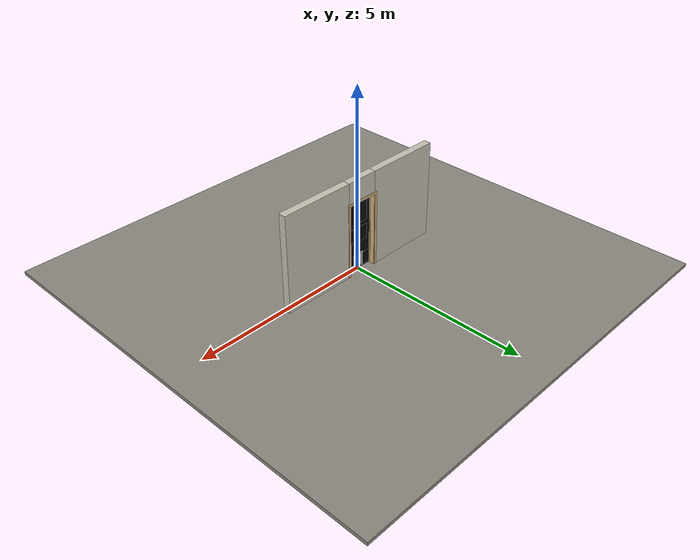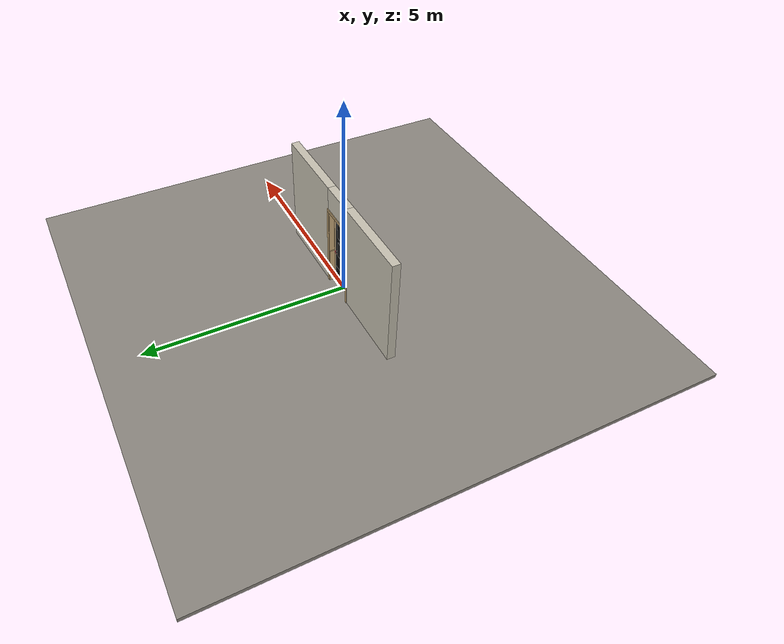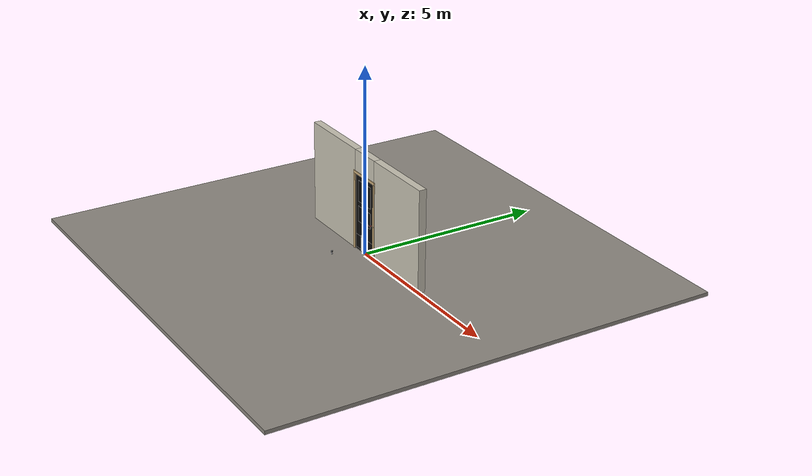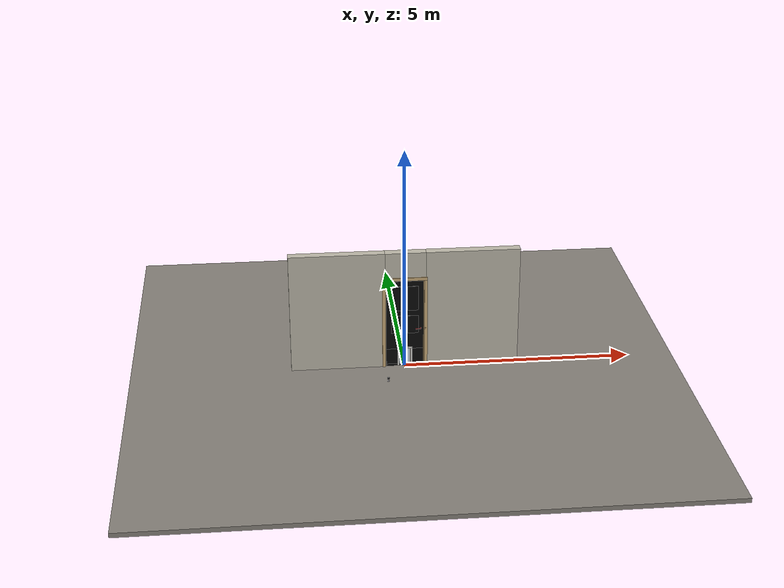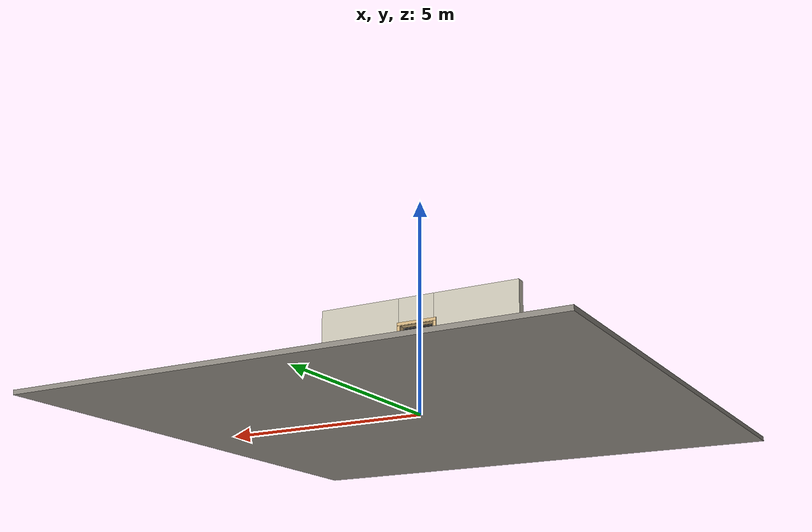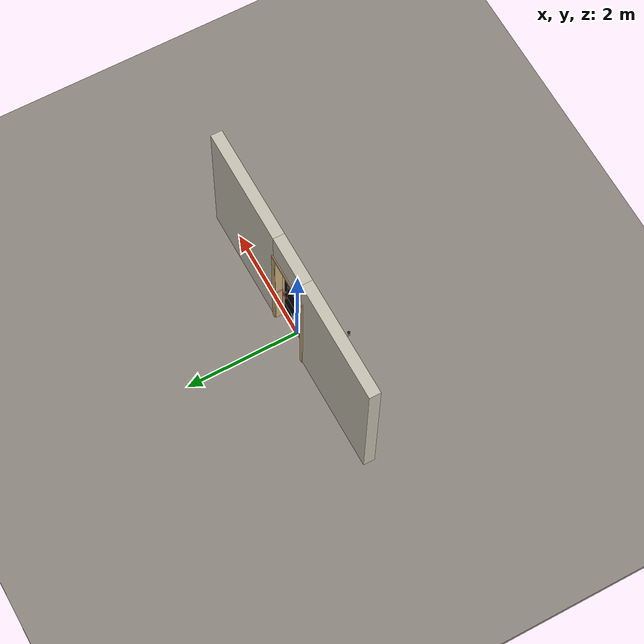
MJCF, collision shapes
<?xml version="1.0" ?>
<mujoco model="db0579_swing_single_full">
  <compiler angle="radian" meshdir="../../hardware" texturedir="../../textures" autolimits="true" inertiafromgeom="false"/>
  <option timestep="0.002" integrator="implicitfast" cone="elliptic" impratio="10" noslip_iterations="3">
    <flag multiccd="enable"/>
  </option>
  <size memory="16M"/>
  <default>
    <geom condim="4" solref="0.005 1" solimp="0.95 0.99 0.001"/>
    <joint solreflimit="0.005 1" solimplimit="0.95 0.99 0.001"/>
    <tendon solreflimit="0.005 1"/>
    <equality solref="0.002 1"/>
  </default>
  <visual>
    <headlight ambient="0.4 0.4 0.4" diffuse="0.7 0.7 0.7" specular="0.2 0.2 0.2"/>
    <quality shadowsize="4096"/>
    <map znear="0.01" zfar="60"/>
  </visual>
  <asset>
    <mesh name="hinge_96510cf394" file="hinge_96510cf394.obj"/>
    <mesh name="hinge_jamb_7fd4ca52b2" file="hinge_jamb_7fd4ca52b2.obj"/>
    <mesh name="lever_748f08efca" file="lever_748f08efca.obj"/>
    <material name="mat_floor" rgba="0.55 0.53 0.5 1" specular="0.2" shininess="0.15" reflectance="0"/>
    <material name="mat_wall" rgba="0.78 0.76 0.7 1" specular="0.2" shininess="0.1" reflectance="0"/>
    <material name="mat_leaf" rgba="0.04 0.04 0.04 1" specular="0.2" shininess="0.5" reflectance="0"/>
    <material name="mat_leaf_panel" rgba="0.037 0.037 0.037 1" specular="0.2" shininess="0.5" reflectance="0"/>
    <material name="mat_hinge" rgba="0.65 0.66 0.68 1" specular="0.74" shininess="0.5" reflectance="0.36"/>
    <material name="mat_op_chrome" rgba="0.9 0.9 0.92 1" specular="0.8" shininess="0.9" reflectance="0.4"/>
    <material name="mat_trim" rgba="0.85 0.66 0.3 1" specular="0.8" shininess="0.75" reflectance="0.4"/>
    <material name="mat_bolt" rgba="0.85 0.66 0.3 1" specular="0.8" shininess="0.75" reflectance="0.4"/>
    <material name="mat_frame" rgba="0.82 0.7 0.5 1" specular="0.2" shininess="0.45" reflectance="0"/>
    <material name="mat_seal" rgba="0.1 0.1 0.1 1" specular="0.2" shininess="0.1" reflectance="0"/>
    <material name="mat_petframe" rgba="0.92 0.92 0.9 1" specular="0.2" shininess="0.6" reflectance="0"/>
    <material name="mat_petflap" rgba="0.85 0.9 0.95 0.45" specular="0.2" shininess="0.7" reflectance="0.1"/>
    <material name="mat_bumper_stop" rgba="0.08 0.08 0.08 1" specular="0.2" shininess="0.1" reflectance="0"/>
    <material name="mat_stop_base" rgba="0.9 0.9 0.92 1" specular="0.8" shininess="0.9" reflectance="0.4"/>
    <texture name="skybox" type="skybox" builtin="gradient" rgb1="0.6 0.7 0.85" rgb2="0.9 0.92 0.95" width="256" height="256"/>
  </asset>
  <worldbody>
    <light name="sun" pos="1.5 -2.5 4" dir="-0.3 0.5 -0.8" directional="true" diffuse="0.8 0.8 0.8" specular="0.3 0.3 0.3" castshadow="true"/>
    <light name="fill" pos="-1.5 2.5 3" dir="0.3 -0.5 -0.7" directional="true" diffuse="0.35 0.35 0.4" castshadow="false"/>
    <camera name="robot_view" pos="0 -2.466687 1.734312" xyaxes="1 0 0 0 0.26963 0.962964" fovy="52"/>
    <camera name="far_view" pos="0 2.617687 1.734312" xyaxes="-1 0 0 0 -0.26963 0.962964" fovy="52"/>
    <camera name="iso" pos="1.932062 -2.059938 2.141063" xyaxes="0.741536 0.670913 0 -0.242917 0.268487 0.932151" fovy="46"/>
    <camera name="detail_handle" pos="0.4364 -0.8725 1.194" xyaxes="0.97561 0.219512 0 -0.070934 0.315262 0.94635" fovy="38"/>
    <geom name="floor" type="box" size="6 6 0.05" pos="0 0 -0.05" material="mat_floor" group="0" contype="1" conaffinity="1" friction="0.8 0.005 0.0001" density="2400"/>
    <geom name="wall_left" type="box" size="1.0355 0.1 1.35" pos="-1.4645 0.0755 1.35" material="mat_wall" group="0" contype="1" conaffinity="1" friction="0.6 0.005 0.0001" density="800"/>
    <geom name="wall_right" type="box" size="1.0205 0.1 1.35" pos="1.4795 0.0755 1.35" material="mat_wall" group="0" contype="1" conaffinity="1" friction="0.6 0.005 0.0001" density="800"/>
    <geom name="wall_header" type="box" size="0.444 0.1 0.303" pos="0.015 0.0755 2.397" material="mat_wall" group="0" contype="1" conaffinity="1" friction="0.6 0.005 0.0001" density="800"/>
    <geom name="hinge_0_jamb" type="mesh" mesh="hinge_jamb_7fd4ca52b2" pos="-0.407 -0.0245 0.259" material="mat_hinge" group="1" contype="0" conaffinity="0" density="7850"/>
    <geom name="hinge_1_jamb" type="mesh" mesh="hinge_jamb_7fd4ca52b2" pos="-0.407 -0.0245 1.025" material="mat_hinge" group="1" contype="0" conaffinity="0" density="7850"/>
    <geom name="hinge_2_jamb" type="mesh" mesh="hinge_jamb_7fd4ca52b2" pos="-0.407 -0.0245 1.861" material="mat_hinge" group="1" contype="0" conaffinity="0" density="7850"/>
    <geom name="jamb_hinge" type="box" size="0.0095 0.1 1.0225" pos="-0.4195 0.0755 1.0225" material="mat_frame" group="0" contype="1" conaffinity="1" friction="0.6 0.005 0.0001" density="400"/>
    <geom name="strike_914_wall_n" type="box" size="0.0245 0.083825 0.0167" pos="0.4345 0.091675 0.914" material="mat_frame" group="0" contype="1" conaffinity="1" friction="0.6 0.005 0.0001" density="400"/>
    <geom name="strike_914_wall_p" type="box" size="0.0245 0.008 0.0167" pos="0.4345 -0.01585 0.914" material="mat_frame" group="0" contype="1" conaffinity="1" friction="0.6 0.005 0.0001" density="400"/>
    <geom name="strike_914_ramp" type="box" size="0.0245 0.01649 0.0167" pos="0.439136 -0.028673 0.914" quat="0.977148 0 0 0.212558" material="mat_frame" group="0" contype="1" conaffinity="1" friction="0.12 0.005 0.0001" density="400"/>
    <geom name="strike_914_back" type="box" size="0.01615 0.00785 0.0167" pos="0.44285 0 0.914" material="mat_frame" group="0" contype="1" conaffinity="1" friction="0.6 0.005 0.0001" density="400"/>
    <geom name="jamb_strike_0" type="box" size="0.0245 0.1 0.44865" pos="0.4345 0.0755 0.44865" material="mat_frame" group="0" contype="1" conaffinity="1" friction="0.6 0.005 0.0001" density="400"/>
    <geom name="jamb_strike_1" type="box" size="0.0245 0.1 0.55715" pos="0.4345 0.0755 1.48785" material="mat_frame" group="0" contype="1" conaffinity="1" friction="0.6 0.005 0.0001" density="400"/>
    <geom name="jamb_head" type="box" size="0.444 0.1 0.0095" pos="0.015 0.0755 2.0545" material="mat_frame" group="0" contype="1" conaffinity="1" friction="0.6 0.005 0.0001" density="400"/>
    <geom name="head_stud" type="box" size="0.444 0.1 0.015" pos="0.015 0.0755 2.079" material="mat_wall" group="0" contype="1" conaffinity="1" friction="0.6 0.005 0.0001" density="500"/>
    <geom name="stop_hinge" type="box" size="0.0055 0.016 1.0225" pos="-0.4045 0.034 1.0225" material="mat_frame" group="0" contype="1" conaffinity="1" friction="0.6 0.005 0.0001" density="400"/>
    <geom name="stop_strike" type="box" size="0.0055 0.016 1.0225" pos="0.4045 0.034 1.0225" material="mat_frame" group="0" contype="1" conaffinity="1" friction="0.6 0.005 0.0001" density="400"/>
    <geom name="stop_head" type="box" size="0.41 0.016 0.0055" pos="0 0.034 2.0395" material="mat_frame" group="0" contype="1" conaffinity="1" friction="0.6 0.005 0.0001" density="400"/>
    <geom name="seal_hinge" type="box" size="0.004 0.002 1.0225" pos="-0.407 0.0195 1.0225" material="mat_seal" group="1" contype="0" conaffinity="0" density="1100"/>
    <geom name="seal_strike" type="box" size="0.004 0.002 1.0225" pos="0.407 0.0195 1.0225" material="mat_seal" group="1" contype="0" conaffinity="0" density="1100"/>
    <geom name="seal_head" type="box" size="0.39 0.002 0.008" pos="0 0.0195 2.033" material="mat_seal" group="1" contype="0" conaffinity="0" density="1100"/>
    <geom name="casing_l_n" type="box" size="0.035 0.008 1.032" pos="-0.459 -0.0325 1.0225" material="mat_frame" group="2" contype="0" conaffinity="0" density="400"/>
    <geom name="casing_r_n" type="box" size="0.035 0.008 1.032" pos="0.459 -0.0325 1.0225" material="mat_frame" group="2" contype="0" conaffinity="0" density="400"/>
    <geom name="casing_h_n" type="box" size="0.494 0.008 0.035" pos="0 -0.0325 2.094" material="mat_frame" group="2" contype="0" conaffinity="0" density="400"/>
    <geom name="casing_l_p" type="box" size="0.035 0.008 1.032" pos="-0.459 0.1835 1.0225" material="mat_frame" group="2" contype="0" conaffinity="0" density="400"/>
    <geom name="casing_r_p" type="box" size="0.035 0.008 1.032" pos="0.459 0.1835 1.0225" material="mat_frame" group="2" contype="0" conaffinity="0" density="400"/>
    <geom name="casing_h_p" type="box" size="0.494 0.008 0.035" pos="0 0.1835 2.094" material="mat_frame" group="2" contype="0" conaffinity="0" density="400"/>
    <geom name="door_stop_base" type="cylinder" size="0.022 0.003" pos="-0.423 -0.71555 0.003" material="mat_stop_base" group="0" contype="1" conaffinity="1" friction="0.6 0.005 0.0001" density="7850"/>
    <geom name="door_stop_post" type="cylinder" size="0.012 0.0245" pos="-0.423 -0.71555 0.0305" material="mat_stop_base" group="0" contype="1" conaffinity="1" friction="0.6 0.005 0.0001" density="7850"/>
    <geom name="door_stop_bumper" type="cylinder" size="0.022 0.02" pos="-0.423 -0.71555 0.075" material="mat_bumper_stop" group="0" contype="1" conaffinity="1" friction="0.6 0.005 0.0001" density="1100"/>
    <site name="approach_point" pos="0 -1.5 0" quat="1 0 0 0" size="0.05" rgba="0.2 0.9 0.2 0.5" group="4"/>
    <site name="goal_point" pos="0 1.5 0" quat="1 0 0 0" size="0.05" rgba="0.2 0.9 0.2 0.5" group="4"/>
    <site name="door_plane_center" pos="0 0 1.0225" quat="1 0 0 0" size="0.02" rgba="0.2 0.9 0.2 0.5" group="4"/>
    <body name="leaf" pos="-0.41 0 0">
      <inertial pos="0.398767 -0.0004 0.929352" mass="14.129336" quat="-0.499694 0.498153 0.50178 0.500366" diaginertia="0.759373821 5.116139107 5.872010227"/>
      <joint name="leaf_hinge" type="hinge" axis="0 0 -1" pos="0.003 -0.0245 0" limited="true" range="0 1.570796" solreflimit="0.02 1" damping="2.160326" frictionloss="0.542787" stiffness="6.6" springref="-0.409091" armature="0.02"/>
      <geom name="leaf_slab_below" type="box" size="0.4065 0.0175 0.0245" pos="0.4095 0 0.0335" material="mat_leaf" group="0" contype="1" conaffinity="1" friction="0.35 0.005 0.0001" density="1"/>
      <geom name="leaf_slab_above" type="box" size="0.4065 0.0175 0.8105" pos="0.4095 0 1.2305" material="mat_leaf" group="0" contype="1" conaffinity="1" friction="0.35 0.005 0.0001" density="1"/>
      <geom name="leaf_slab_left" type="box" size="0.14025 0.0175 0.181" pos="0.14325 0 0.239" material="mat_leaf" group="0" contype="1" conaffinity="1" friction="0.35 0.005 0.0001" density="1"/>
      <geom name="leaf_slab_right" type="box" size="0.14025 0.0175 0.181" pos="0.67575 0 0.239" material="mat_leaf" group="0" contype="1" conaffinity="1" friction="0.35 0.005 0.0001" density="1"/>
      <geom name="leaf_panel_2_n" type="box" size="0.11575 0.003 0.209032" pos="0.22875 -0.0205 1.009616" material="mat_leaf_panel" group="1" contype="0" conaffinity="0" density="1"/>
      <geom name="leaf_panel_2_p" type="box" size="0.11575 0.003 0.209032" pos="0.22875 0.0205 1.009616" material="mat_leaf_panel" group="1" contype="0" conaffinity="0" density="1"/>
      <geom name="leaf_panel_3_n" type="box" size="0.11575 0.003 0.209032" pos="0.59025 -0.0205 1.009616" material="mat_leaf_panel" group="1" contype="0" conaffinity="0" density="1"/>
      <geom name="leaf_panel_3_p" type="box" size="0.11575 0.003 0.209032" pos="0.59025 0.0205 1.009616" material="mat_leaf_panel" group="1" contype="0" conaffinity="0" density="1"/>
      <geom name="leaf_panel_4_n" type="box" size="0.11575 0.003 0.285376" pos="0.22875 -0.0205 1.634024" material="mat_leaf_panel" group="1" contype="0" conaffinity="0" density="1"/>
      <geom name="leaf_panel_4_p" type="box" size="0.11575 0.003 0.285376" pos="0.22875 0.0205 1.634024" material="mat_leaf_panel" group="1" contype="0" conaffinity="0" density="1"/>
      <geom name="leaf_panel_5_n" type="box" size="0.11575 0.003 0.285376" pos="0.59025 -0.0205 1.634024" material="mat_leaf_panel" group="1" contype="0" conaffinity="0" density="1"/>
      <geom name="leaf_panel_5_p" type="box" size="0.11575 0.003 0.285376" pos="0.59025 0.0205 1.634024" material="mat_leaf_panel" group="1" contype="0" conaffinity="0" density="1"/>
      <geom name="hinge_0" type="mesh" mesh="hinge_96510cf394" pos="0.003 -0.0245 0.259" material="mat_hinge" group="1" contype="0" conaffinity="0" density="7850"/>
      <geom name="hinge_1" type="mesh" mesh="hinge_96510cf394" pos="0.003 -0.0245 1.025" material="mat_hinge" group="1" contype="0" conaffinity="0" density="7850"/>
      <geom name="hinge_2" type="mesh" mesh="hinge_96510cf394" pos="0.003 -0.0245 1.861" material="mat_hinge" group="1" contype="0" conaffinity="0" density="7850"/>
      <geom name="leaf_latch_bolt_faceplate" type="box" size="0.0006 0.01235 0.0267" pos="0.8154 0 0.914" material="mat_bolt" group="1" contype="0" conaffinity="0" density="8500"/>
      <geom name="pet_frame_top" type="box" size="0.165 0.0235 0.02" pos="0.4095 0 0.439" material="mat_petframe" group="2" contype="0" conaffinity="0" density="1200"/>
      <geom name="pet_frame_l" type="box" size="0.02 0.0235 0.22" pos="0.2645 0 0.239" material="mat_petframe" group="2" contype="0" conaffinity="0" density="1200"/>
      <geom name="pet_frame_r" type="box" size="0.02 0.0235 0.22" pos="0.5545 0 0.239" material="mat_petframe" group="2" contype="0" conaffinity="0" density="1200"/>
      <site name="leaf_edge_mid" pos="0.816 0 1.016" quat="1 0 0 0" size="0.02" rgba="0.2 0.9 0.2 0.5" group="4"/>
      <body name="leaf_handle" pos="0.756 0 0.914">
        <inertial pos="-0.024417 0 0" mass="0.839807" quat="0.707107 0 0 -0.707107" diaginertia="0.001182467 0.002815434 0.003861215"/>
        <joint name="leaf_handle_hinge" type="hinge" axis="0 -1 0" limited="true" range="0 0.87" damping="0.205084" frictionloss="0.04" stiffness="0.9" springref="-0.444444" armature="0.01"/>
        <geom name="leaf_handle_spindle" type="cylinder" size="0.006 0.0255" pos="0 0 0" quat="0.707107 -0.707107 0 0" material="mat_op_chrome" group="1" contype="0" conaffinity="0" density="7850"/>
        <geom name="leaf_handle_lever_n" type="mesh" mesh="lever_748f08efca" pos="0 -0.0175 0" quat="0.707107 0.707107 0 0" material="mat_op_chrome" group="1" contype="0" conaffinity="0" density="3000"/>
        <geom name="leaf_handle_lever_col_n" type="capsule" size="0.008 0.048" pos="-0.056 -0.0725 0" quat="0.707107 0 -0.707107 0" material="mat_op_chrome" group="3" contype="1" conaffinity="1" rgba="0.8 0.3 0.3 0.25" friction="0.7 0.01 0.0001" density="3000"/>
        <geom name="leaf_handle_hub_col_n" type="cylinder" size="0.012 0.022" pos="0 -0.0475 0" quat="0.707107 -0.707107 0 0" material="mat_op_chrome" group="3" contype="1" conaffinity="1" rgba="0.8 0.3 0.3 0.25" friction="0.6 0.005 0.0001" density="3000"/>
        <geom name="leaf_handle_lever_p" type="mesh" mesh="lever_748f08efca" pos="0 0.0175 0" quat="-0.707107 0.707107 0 0" material="mat_op_chrome" group="1" contype="0" conaffinity="0" density="3000"/>
        <geom name="leaf_handle_lever_col_p" type="capsule" size="0.008 0.048" pos="-0.056 0.0725 0" quat="0.707107 0 -0.707107 0" material="mat_op_chrome" group="3" contype="1" conaffinity="1" rgba="0.8 0.3 0.3 0.25" friction="0.7 0.01 0.0001" density="3000"/>
        <geom name="leaf_handle_hub_col_p" type="cylinder" size="0.012 0.022" pos="0 0.0475 0" quat="0.707107 -0.707107 0 0" material="mat_op_chrome" group="3" contype="1" conaffinity="1" rgba="0.8 0.3 0.3 0.25" friction="0.6 0.005 0.0001" density="3000"/>
        <site name="leaf_handle_grip_n" pos="-0.0896 -0.0725 0" quat="1 0 0 0" size="0.012" rgba="0.2 0.9 0.2 0.5" group="4"/>
        <site name="leaf_handle_grip_p" pos="-0.0896 0.0725 0" quat="1 0 0 0" size="0.012" rgba="0.2 0.9 0.2 0.5" group="4"/>
      </body>
      <body name="leaf_latch_bolt" pos="0.816 0 0.914">
        <inertial pos="-0.00865 0 0" mass="0.041419" quat="0.92388 -0.382683 0 0" diaginertia="0.000000798 0.000005598 0.000005598"/>
        <joint name="leaf_latch_bolt_slide" type="slide" axis="-1 0 0" limited="true" range="0 0.0127" damping="2" frictionloss="0.3" stiffness="300" springref="-0.008333" armature="0.1"/>
        <geom name="leaf_latch_bolt_capsule" type="capsule" size="0.00635 0.015" pos="-0.00865 0 0" quat="0.707107 0 0.707107 0" material="mat_bolt" group="0" contype="1" conaffinity="1" friction="0.2 0.005 0.0001" density="8500"/>
      </body>
      <body name="pet_flap" pos="0.4095 0 0.419">
        <inertial pos="0 0 -0.18" mass="0.077091" quat="-0.5 0.5 0.5 0.5" diaginertia="0.000376334 0.000796097 0.001172226"/>
        <joint name="pet_flap_hinge" type="hinge" axis="1 0 0" limited="true" range="-1.45 1.45" damping="0.02" frictionloss="0.02" armature="0.005"/>
        <geom name="pet_flap_geom" type="box" size="0.121 0.002 0.176" pos="0 0 -0.18" material="mat_petflap" group="0" contype="1" conaffinity="1" friction="0.6 0.005 0.0001" density="1250"/>
      </body>
    </body>
  </worldbody>
  <tendon>
    <fixed name="leaf_latch_bolt_coupling" limited="true" range="0 10">
      <joint joint="leaf_latch_bolt_slide" coef="1"/>
      <joint joint="leaf_handle_hinge" coef="-0.016076"/>
    </fixed>
  </tendon>
  <sensor>
    <jointpos name="leaf_hinge_pos" joint="leaf_hinge"/>
    <jointvel name="leaf_hinge_vel" joint="leaf_hinge"/>
    <jointpos name="leaf_handle_hinge_pos" joint="leaf_handle_hinge"/>
    <jointvel name="leaf_handle_hinge_vel" joint="leaf_handle_hinge"/>
    <jointpos name="leaf_latch_bolt_slide_pos" joint="leaf_latch_bolt_slide"/>
    <jointvel name="leaf_latch_bolt_slide_vel" joint="leaf_latch_bolt_slide"/>
    <jointpos name="pet_flap_hinge_pos" joint="pet_flap_hinge"/>
    <jointvel name="pet_flap_hinge_vel" joint="pet_flap_hinge"/>
  </sensor>
</mujoco>
